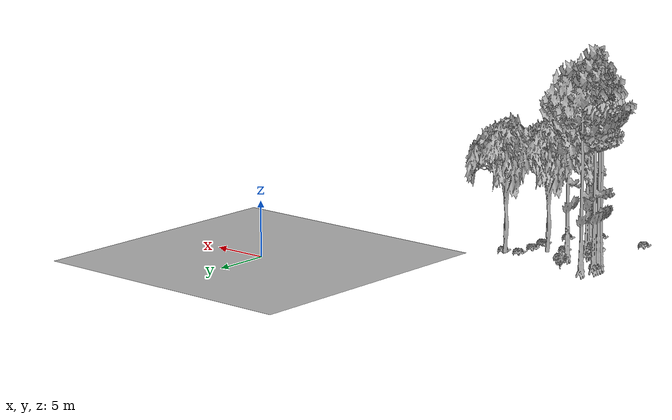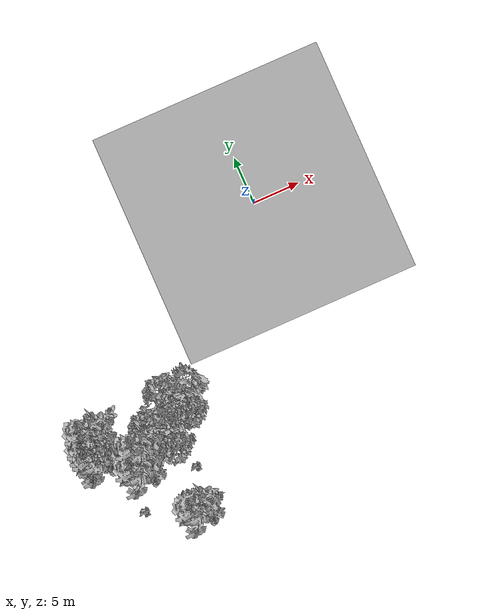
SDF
<sdf version="1.7">
 <world name="default">
  <model name="ground_plane">
   <static>1</static>
   <link name="link">
    <collision name="collision">
     <pose>-50 0 0 0 -0 0</pose>
     <geometry><plane><normal>0 0 1</normal><size>80 80</size></plane></geometry>
     <surface><contact><ode><min_depth>0.01</min_depth><max_vel>0</max_vel></ode></contact></surface>
    </collision>
    <visual name="grass">
     <cast_shadows>0</cast_shadows>
     <geometry>
      <mesh>
       <scale>0.46714285714285714 0.46714285714285714 0.1</scale>
       <uri>file://grass_plane/meshes/grass_plane.dae</uri>
      </mesh>
     </geometry>
    </visual>
   </link>
  </model>
  <model name="Tree 40">
   <static>1</static>
   <pose>-19.756055770321694 -17.589001052693725 0 1.57079 -0 0</pose>
   <link name="link">
    <collision name="collision">
     <geometry><mesh><scale>3.5 5 3.5</scale><uri>model://tree_9/meshes/tree_9.obj</uri></mesh></geometry>
    </collision>
    <visual name="visual">
     <geometry><mesh><scale>3.5 5 3.5</scale><uri>model://tree_9/meshes/tree_9.obj</uri></mesh></geometry>
    </visual>
   </link>
  </model>
  <model name="Tree 103">
   <static>1</static>
   <pose>-23.813082189593615 -16.83848775562658 0 1.57079 -0 0</pose>
   <link name="link">
    <collision name="collision">
     <geometry><mesh><scale>3.5 5 3.5</scale><uri>model://tree_9/meshes/tree_9.obj</uri></mesh></geometry>
    </collision>
    <visual name="visual">
     <geometry><mesh><scale>3.5 5 3.5</scale><uri>model://tree_9/meshes/tree_9.obj</uri></mesh></geometry>
    </visual>
   </link>
  </model>
  <model name="Tree 168">
   <static>1</static>
   <pose>-16.97174207428818 -24.949730979685132 0 1.57079 -0 0</pose>
   <link name="link">
    <collision name="collision">
     <geometry><mesh><scale>3.5 5 3.5</scale><uri>model://tree_9/meshes/tree_9.obj</uri></mesh></geometry>
    </collision>
    <visual name="visual">
     <geometry><mesh><scale>3.5 5 3.5</scale><uri>model://tree_9/meshes/tree_9.obj</uri></mesh></geometry>
    </visual>
   </link>
  </model>
  <model name="Tree 245">
   <static>1</static>
   <pose>-23.8666174365783 -15.783159160072735 0 1.57079 -0 0</pose>
   <link name="link">
    <collision name="collision">
     <geometry><mesh><scale>3.5 5 3.5</scale><uri>model://tree_9/meshes/tree_9.obj</uri></mesh></geometry>
    </collision>
    <visual name="visual">
     <geometry><mesh><scale>3.5 5 3.5</scale><uri>model://tree_9/meshes/tree_9.obj</uri></mesh></geometry>
    </visual>
   </link>
  </model>
  <model name="Tree 266">
   <static>1</static>
   <pose>-23.509049577460107 -14.423459165437478 0 1.57079 -0 0</pose>
   <link name="link">
    <collision name="collision">
     <geometry><mesh><scale>3.5 5 3.5</scale><uri>model://tree_9/meshes/tree_9.obj</uri></mesh></geometry>
    </collision>
    <visual name="visual">
     <geometry><mesh><scale>3.5 5 3.5</scale><uri>model://tree_9/meshes/tree_9.obj</uri></mesh></geometry>
    </visual>
   </link>
  </model>
  <model name="Tree 417">
   <static>1</static>
   <pose>-17.797827718626355 -17.56941031779676 0 1.57079 -0 0</pose>
   <link name="link">
    <collision name="collision">
     <geometry><mesh><scale>3.5 5 3.5</scale><uri>model://tree_2/meshes/tree_2.obj</uri></mesh></geometry>
    </collision>
    <visual name="visual">
     <geometry><mesh><scale>3.5 5 3.5</scale><uri>model://tree_2/meshes/tree_2.obj</uri></mesh></geometry>
    </visual>
   </link>
  </model>
  <model name="Tree 482">
   <static>1</static>
   <pose>-23.854930371213875 -16.422145219559265 0 1.57079 -0 0</pose>
   <link name="link">
    <collision name="collision">
     <geometry><mesh><scale>3.5 5 3.5</scale><uri>model://tree_9/meshes/tree_9.obj</uri></mesh></geometry>
    </collision>
    <visual name="visual">
     <geometry><mesh><scale>3.5 5 3.5</scale><uri>model://tree_9/meshes/tree_9.obj</uri></mesh></geometry>
    </visual>
   </link>
  </model>
  <model name="Tree 519">
   <static>1</static>
   <pose>-20.54670427522771 -19.382285750099236 0 1.57079 -0 0</pose>
   <link name="link">
    <collision name="collision">
     <geometry><mesh><scale>3.5 5 3.5</scale><uri>model://tree_9/meshes/tree_9.obj</uri></mesh></geometry>
    </collision>
    <visual name="visual">
     <geometry><mesh><scale>3.5 5 3.5</scale><uri>model://tree_9/meshes/tree_9.obj</uri></mesh></geometry>
    </visual>
   </link>
  </model>
  <model name="Tree 535">
   <static>1</static>
   <pose>-15.122444117706635 -14.996620124323634 0 1.57079 -0 0</pose>
   <link name="link">
    <collision name="collision">
     <geometry><mesh><scale>3.5 5 3.5</scale><uri>model://tree_2/meshes/tree_2.obj</uri></mesh></geometry>
    </collision>
    <visual name="visual">
     <geometry><mesh><scale>3.5 5 3.5</scale><uri>model://tree_2/meshes/tree_2.obj</uri></mesh></geometry>
    </visual>
   </link>
  </model>
  <model name="Bush 127">
   <static>1</static>
   <pose>-16.358746018371175 -22.44189924727765 0 1.57079 -0 0</pose>
   <link name="link">
    <collision name="collision">
     <geometry><mesh><scale>2 2 2</scale><uri>model://bush_2/meshes/bush_2.obj</uri></mesh></geometry>
     <surface><contact><collide_without_contact>false</collide_without_contact></contact></surface>
    </collision>
    <visual name="visual">
     <geometry><mesh><scale>2 2 2</scale><uri>model://bush_2/meshes/bush_2.obj</uri></mesh></geometry>
    </visual>
   </link>
  </model>
  <model name="Bush 134">
   <static>1</static>
   <pose>-21.917532965096854 -13.667369105379315 0 1.57079 -0 0</pose>
   <link name="link">
    <collision name="collision">
     <geometry><mesh><scale>2 2 2</scale><uri>model://bush_0/meshes/bush_0.obj</uri></mesh></geometry>
     <surface><contact><collide_without_contact>false</collide_without_contact></contact></surface>
    </collision>
    <visual name="visual">
     <geometry><mesh><scale>2 2 2</scale><uri>model://bush_0/meshes/bush_0.obj</uri></mesh></geometry>
    </visual>
   </link>
  </model>
  <model name="Bush 304">
   <static>1</static>
   <pose>-15.721144851421293 -19.54159593127106 0 1.57079 -0 0</pose>
   <link name="link">
    <collision name="collision">
     <geometry><mesh><scale>2 2 2</scale><uri>model://bush_2/meshes/bush_2.obj</uri></mesh></geometry>
     <surface><contact><collide_without_contact>false</collide_without_contact></contact></surface>
    </collision>
    <visual name="visual">
     <geometry><mesh><scale>2 2 2</scale><uri>model://bush_2/meshes/bush_2.obj</uri></mesh></geometry>
    </visual>
   </link>
  </model>
  <model name="Bush 359">
   <static>1</static>
   <pose>-23.968864434959816 -15.917983099528552 0 1.57079 -0 0</pose>
   <link name="link">
    <collision name="collision">
     <geometry><mesh><scale>2 2 2</scale><uri>model://bush_2/meshes/bush_2.obj</uri></mesh></geometry>
     <surface><contact><collide_without_contact>false</collide_without_contact></contact></surface>
    </collision>
    <visual name="visual">
     <geometry><mesh><scale>2 2 2</scale><uri>model://bush_2/meshes/bush_2.obj</uri></mesh></geometry>
    </visual>
   </link>
  </model>
  <model name="Bush 368">
   <static>1</static>
   <pose>-19.75604818553031 -16.594652228711865 0 1.57079 -0 0</pose>
   <link name="link">
    <collision name="collision">
     <geometry><mesh><scale>2 2 2</scale><uri>model://bush_2/meshes/bush_2.obj</uri></mesh></geometry>
     <surface><contact><collide_without_contact>false</collide_without_contact></contact></surface>
    </collision>
    <visual name="visual">
     <geometry><mesh><scale>2 2 2</scale><uri>model://bush_2/meshes/bush_2.obj</uri></mesh></geometry>
    </visual>
   </link>
  </model>
  <model name="Bush 438">
   <static>1</static>
   <pose>-23.05681867481797 -24.579535234523906 0 1.57079 -0 0</pose>
   <link name="link">
    <collision name="collision">
     <geometry><mesh><scale>2 2 2</scale><uri>model://bush_2/meshes/bush_2.obj</uri></mesh></geometry>
     <surface><contact><collide_without_contact>false</collide_without_contact></contact></surface>
    </collision>
    <visual name="visual">
     <geometry><mesh><scale>2 2 2</scale><uri>model://bush_2/meshes/bush_2.obj</uri></mesh></geometry>
    </visual>
   </link>
  </model>
  <model name="Bush 470">
   <static>1</static>
   <pose>-16.04094700079233 -17.63062333949349 0 1.57079 -0 0</pose>
   <link name="link">
    <collision name="collision">
     <geometry><mesh><scale>2 2 2</scale><uri>model://bush_2/meshes/bush_2.obj</uri></mesh></geometry>
     <surface><contact><collide_without_contact>false</collide_without_contact></contact></surface>
    </collision>
    <visual name="visual">
     <geometry><mesh><scale>2 2 2</scale><uri>model://bush_2/meshes/bush_2.obj</uri></mesh></geometry>
    </visual>
   </link>
  </model>
  <model name="Bush 492">
   <static>1</static>
   <pose>-14.62716194641969 -15.34819210321535 0 1.57079 -0 0</pose>
   <link name="link">
    <collision name="collision">
     <geometry><mesh><scale>2 2 2</scale><uri>model://bush_2/meshes/bush_2.obj</uri></mesh></geometry>
     <surface><contact><collide_without_contact>false</collide_without_contact></contact></surface>
    </collision>
    <visual name="visual">
     <geometry><mesh><scale>2 2 2</scale><uri>model://bush_2/meshes/bush_2.obj</uri></mesh></geometry>
    </visual>
   </link>
  </model>
  <model name="Bush 580">
   <static>1</static>
   <pose>-15.887323551312111 -19.618869513960384 0 1.57079 -0 0</pose>
   <link name="link">
    <collision name="collision">
     <geometry><mesh><scale>2 2 2</scale><uri>model://bush_2/meshes/bush_2.obj</uri></mesh></geometry>
     <surface><contact><collide_without_contact>false</collide_without_contact></contact></surface>
    </collision>
    <visual name="visual">
     <geometry><mesh><scale>2 2 2</scale><uri>model://bush_2/meshes/bush_2.obj</uri></mesh></geometry>
    </visual>
   </link>
  </model>
  <model name="Bush 581">
   <static>1</static>
   <pose>-18.471490533888446 -24.56277692889025 0 1.57079 -0 0</pose>
   <link name="link">
    <collision name="collision">
     <geometry><mesh><scale>2 2 2</scale><uri>model://bush_2/meshes/bush_2.obj</uri></mesh></geometry>
     <surface><contact><collide_without_contact>false</collide_without_contact></contact></surface>
    </collision>
    <visual name="visual">
     <geometry><mesh><scale>2 2 2</scale><uri>model://bush_2/meshes/bush_2.obj</uri></mesh></geometry>
    </visual>
   </link>
  </model>
  <model name="Bush 599">
   <static>1</static>
   <pose>-21.87350807782482 -18.77643478353958 0 1.57079 -0 0</pose>
   <link name="link">
    <collision name="collision">
     <geometry><mesh><scale>2 2 2</scale><uri>model://bush_2/meshes/bush_2.obj</uri></mesh></geometry>
     <surface><contact><collide_without_contact>false</collide_without_contact></contact></surface>
    </collision>
    <visual name="visual">
     <geometry><mesh><scale>2 2 2</scale><uri>model://bush_2/meshes/bush_2.obj</uri></mesh></geometry>
    </visual>
   </link>
  </model>
  <model name="Bush 608">
   <static>1</static>
   <pose>-18.59313167738472 -18.865052136363765 0 1.57079 -0 0</pose>
   <link name="link">
    <collision name="collision">
     <geometry><mesh><scale>2 2 2</scale><uri>model://bush_2/meshes/bush_2.obj</uri></mesh></geometry>
     <surface><contact><collide_without_contact>false</collide_without_contact></contact></surface>
    </collision>
    <visual name="visual">
     <geometry><mesh><scale>2 2 2</scale><uri>model://bush_2/meshes/bush_2.obj</uri></mesh></geometry>
    </visual>
   </link>
  </model>
  <model name="Bush 613">
   <static>1</static>
   <pose>-22.831922329362094 -17.651229234716403 0 1.57079 -0 0</pose>
   <link name="link">
    <collision name="collision">
     <geometry><mesh><scale>2 2 2</scale><uri>model://bush_1/meshes/bush_1.obj</uri></mesh></geometry>
     <surface><contact><collide_without_contact>false</collide_without_contact></contact></surface>
    </collision>
    <visual name="visual">
     <geometry><mesh><scale>2 2 2</scale><uri>model://bush_1/meshes/bush_1.obj</uri></mesh></geometry>
    </visual>
   </link>
  </model>
  <model name="Bush 633">
   <static>1</static>
   <pose>-16.038103436865242 -15.66702224571091 0 1.57079 -0 0</pose>
   <link name="link">
    <collision name="collision">
     <geometry><mesh><scale>2 2 2</scale><uri>model://bush_2/meshes/bush_2.obj</uri></mesh></geometry>
     <surface><contact><collide_without_contact>false</collide_without_contact></contact></surface>
    </collision>
    <visual name="visual">
     <geometry><mesh><scale>2 2 2</scale><uri>model://bush_2/meshes/bush_2.obj</uri></mesh></geometry>
    </visual>
   </link>
  </model>
 </world>
</sdf>
